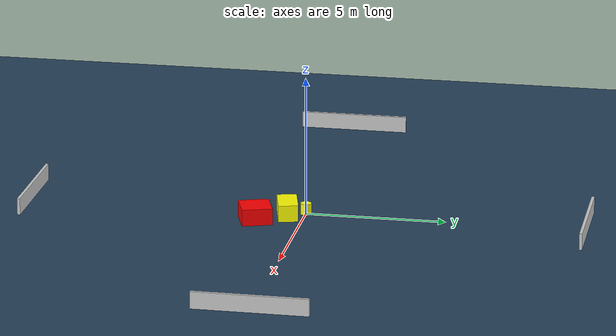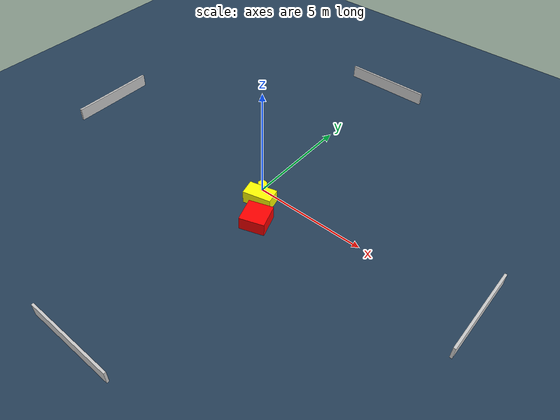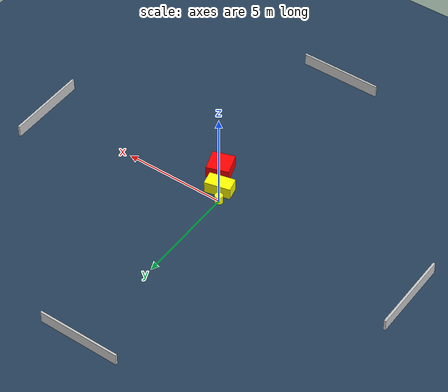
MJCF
<?xml version="1.0" ?>
<mujoco model="generated_environment">
  <option timestep="0.01" integrator="RK4" cone="elliptic"/>
  <default>
    <geom density="1"/>
  </default>
  <asset>
    <texture builtin="gradient" height="3072" name="skybox" rgb1="0.3 0.5 0.7" rgb2="0 0 0" type="skybox" width="512"/>
    <texture builtin="checker" height="300" name="groundplane" rgb1="0.2 0.3 0.4" rgb2="0.1 0.2 0.3" type="2d" width="300"/>
    <material name="groundplane" reflectance="0.2" texrepeat="5 5" texture="groundplane"/>
  </asset>
  <worldbody>
    <light dir="0 0 -1" directional="true" pos="0 0 1.5"/>
    <geom condim="3" friction="0.5 0.005 0.001" material="groundplane" name="floor" pos="0 0 0" size="0 0 0.05" type="plane"/>
    <body name="walls">
      <geom name="wall_1" condim="4" pos="-10.0 0.0 0.3" rgba="0.800000011920929 0.800000011920929 0.800000011920929 1.0" size="0.05 2.0 0.3" type="box"/>
      <geom name="wall_2" condim="4" pos="10.0 0.0 0.3" rgba="0.800000011920929 0.800000011920929 0.800000011920929 1.0" size="0.05 2.0 0.3" type="box"/>
      <geom name="wall_3" condim="4" pos="0.0 -10.0 0.3" rgba="0.800000011920929 0.800000011920929 0.800000011920929 1.0" size="2.0 0.05 0.3" type="box"/>
      <geom name="wall_4" condim="4" pos="0.0 10.0 0.3" rgba="0.800000011920929 0.800000011920929 0.800000011920929 1.0" size="2.0 0.05 0.3" type="box"/>
    </body>
    <body name="robot">
      <joint name="joint_x" type="slide" pos="0 0 0" axis="1 0 0"/>
      <joint name="joint_y" type="slide" pos="0 0 0" axis="0 1 0"/>
      <geom name="robot" type="cylinder" pos="0.0 0.0 0.2" size="0.2 0.2 0.0" mass="5.0" friction="1.0 0.005 0.0001" condim="4" rgba="1.0 1.0 0.0 1.0"/>
    </body>
    <body name="obstacle_1_movable">
      <geom name="obstacle_1_movable" condim="4" pos="0.3753391091155781 -0.5976513332888291 0.3" euler="0 0 13.530770464794193" friction="0.0 0.005 0.001" rgba="1.0 1.0 0.0 1.0" size="0.6335884749006857 0.3544070447937729 0.3" type="box" mass="0.1"/>
      <joint type="free"/>
    </body>
    <body name="obstacle_2_static">
      <geom name="obstacle_2_static" condim="4" pos="1.0605686205127816 -1.6217706853155274 0.3" euler="0 0 198.80309175033221" friction="0.0 0.005 0.001" rgba="1.0 0.0 0.0 1.0" size="0.547534599838204 0.5452699698368046 0.3" type="box"/>
    </body>
  </worldbody>
  <actuator>
    <motor name="actuator_x" joint="joint_x" gear="1" ctrlrange="-1 1"/>
    <motor name="actuator_y" joint="joint_y" gear="1" ctrlrange="-1 1"/>
  </actuator>
</mujoco>
